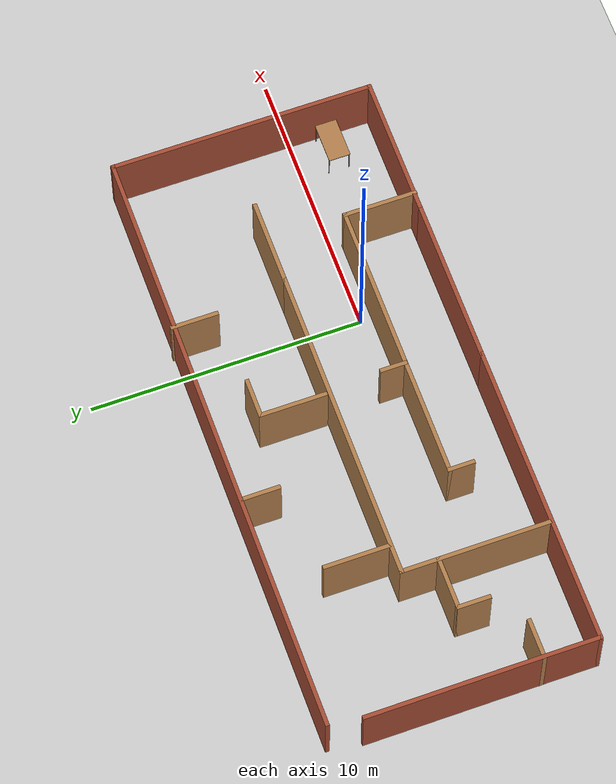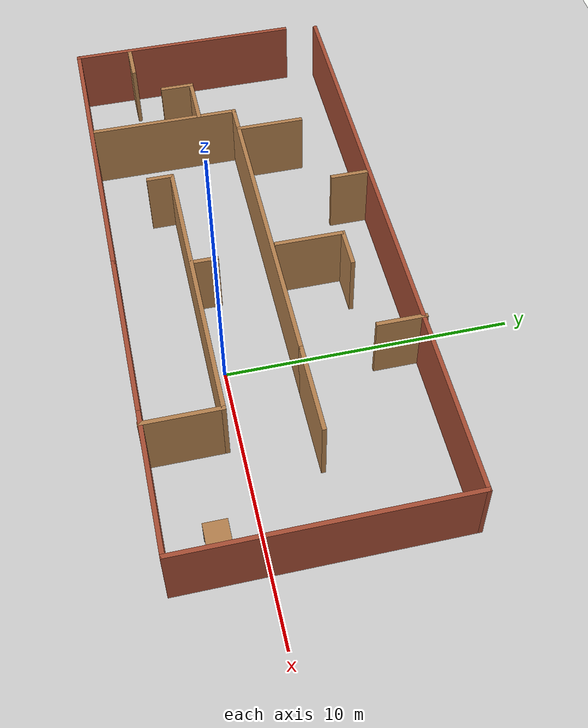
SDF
<sdf version="1.7">
 <world name="default">
  <light name="sun" type="directional">
   <pose>0 0 10 0 -0 0</pose>
   <diffuse>0.8 0.8 0.8 1</diffuse>
   <specular>0.2 0.2 0.2 1</specular>
   <attenuation>
    <range>1000</range>
    <constant>0.9</constant>
    <linear>0.01</linear>
    <quadratic>0.001</quadratic>
   </attenuation>
   <direction>-0.5 0.1 -0.9</direction>
   <spot><inner_angle>0</inner_angle><outer_angle>0</outer_angle><falloff>0</falloff></spot>
  </light>
  <model name="ground_plane">
   <static>1</static>
   <link name="link">
    <collision name="collision">
     <geometry><plane><normal>0 0 1</normal><size>100 100</size></plane></geometry>
     <surface>
      <contact><collide_bitmask>65535</collide_bitmask></contact>
      <friction><ode><mu>100</mu><mu2>50</mu2></ode></friction>
     </surface>
    </collision>
    <visual name="visual">
     <cast_shadows>0</cast_shadows>
     <geometry><plane><normal>0 0 1</normal><size>100 100</size></plane></geometry>
     <material>
      <script><uri>file://media/materials/scripts/gazebo.material</uri><name>Gazebo/Grey</name></script>
     </material>
    </visual>
   </link>
  </model>
  <gravity>0 0 -9.8</gravity>
  <magnetic_field>6e-06 2.3e-05 -4.2e-05</magnetic_field>
  <atmosphere type="adiabatic"/>
  <physics type="ode">
   <max_step_size>0.001</max_step_size>
   <real_time_factor>1</real_time_factor>
   <real_time_update_rate>1000</real_time_update_rate>
  </physics>
  <scene><ambient>0.4 0.4 0.4 1</ambient><background>0.7 0.7 0.7 1</background><shadows>1</shadows></scene>
  <audio><device>default</device></audio>
  <spherical_coordinates>
   <surface_model>EARTH_WGS84</surface_model>
   <latitude_deg>0</latitude_deg>
   <longitude_deg>0</longitude_deg>
   <elevation>0</elevation>
   <heading_deg>0</heading_deg>
  </spherical_coordinates>
  <model name="exploration_world2">
   <pose>-3.61272 1.77327 0 0 -0 0</pose>
   <link name="Wall_27">
    <collision name="Wall_27_Collision">
     <geometry><box><size>6.25 0.15 2.5</size></box></geometry>
     <pose>0 0 1.25 0 -0 0</pose>
    </collision>
    <visual name="Wall_27_Visual">
     <pose>0 0 1.25 0 -0 0</pose>
     <geometry><box><size>6.25 0.15 2.5</size></box></geometry>
     <material>
      <script><uri>file://media/materials/scripts/gazebo.material</uri><name>Gazebo/Bricks</name></script>
      <ambient>1 1 1 1</ambient>
     </material>
     <meta><layer>0</layer></meta>
    </visual>
    <pose>3.00271 -4.82327 0 0 -0 0</pose>
   </link>
   <link name="Wall_28">
    <collision name="Wall_28_Collision">
     <geometry><box><size>5.25 0.15 2.5</size></box></geometry>
     <pose>0 0 1.25 0 -0 0</pose>
    </collision>
    <visual name="Wall_28_Visual">
     <pose>0 0 1.25 0 -0 0</pose>
     <geometry><box><size>5.25 0.15 2.5</size></box></geometry>
     <material>
      <script><uri>file://media/materials/scripts/gazebo.material</uri><name>Gazebo/Bricks</name></script>
      <ambient>1 1 1 1</ambient>
     </material>
     <meta><layer>0</layer></meta>
    </visual>
    <pose>8.60271 -4.82327 0 0 -0 0</pose>
   </link>
   <link name="Wall_29">
    <collision name="Wall_29_Collision">
     <geometry><box><size>9.75 0.15 2.5</size></box></geometry>
     <pose>0 0 1.25 0 -0 0</pose>
    </collision>
    <visual name="Wall_29_Visual">
     <pose>0 0 1.25 0 -0 0</pose>
     <geometry><box><size>9.75 0.15 2.5</size></box></geometry>
     <material>
      <script><uri>file://media/materials/scripts/gazebo.material</uri><name>Gazebo/Bricks</name></script>
      <ambient>1 1 1 1</ambient>
     </material>
     <meta><layer>0</layer></meta>
    </visual>
    <pose>11.1527 -0.023267 0 0 -0 1.5708</pose>
   </link>
   <link name="Wall_30">
    <collision name="Wall_30_Collision">
     <geometry><box><size>22.25 0.15 2.5</size></box></geometry>
     <pose>0 0 1.25 0 -0 0</pose>
    </collision>
    <visual name="Wall_30_Visual">
     <pose>0 0 1.25 0 -0 0</pose>
     <geometry><box><size>22.25 0.15 2.5</size></box></geometry>
     <material>
      <script><uri>file://media/materials/scripts/gazebo.material</uri><name>Gazebo/Bricks</name></script>
      <ambient>1 1 1 1</ambient>
     </material>
     <meta><layer>0</layer></meta>
    </visual>
    <pose>0.102715 4.77673 0 0 -0 3.14159</pose>
   </link>
   <link name="Wall_32">
    <collision name="Wall_32_Collision">
     <geometry><box><size>11.25 0.15 2.5</size></box></geometry>
     <pose>0 0 1.25 0 -0 0</pose>
    </collision>
    <visual name="Wall_32_Visual">
     <pose>0 0 1.25 0 -0 0</pose>
     <geometry><box><size>11.25 0.15 2.5</size></box></geometry>
     <material>
      <script><uri>file://media/materials/scripts/gazebo.material</uri><name>Gazebo/Bricks</name></script>
      <ambient>1 1 1 1</ambient>
     </material>
     <meta><layer>0</layer></meta>
    </visual>
    <pose>-5.59729 -4.82327 0 0 -0 3.14159</pose>
   </link>
   <link name="Wall_33">
    <collision name="Wall_33_Collision">
     <geometry><box><size>8.5 0.15 2.5</size></box></geometry>
     <pose>0 0 1.25 0 -0 0</pose>
    </collision>
    <visual name="Wall_33_Visual">
     <pose>0 0 1.25 0 -0 0</pose>
     <geometry><box><size>8.5 0.15 2.5</size></box></geometry>
     <material>
      <script><uri>file://media/materials/scripts/gazebo.material</uri><name>Gazebo/Bricks</name></script>
      <ambient>1 1 1 1</ambient>
     </material>
     <meta><layer>0</layer></meta>
    </visual>
    <pose>-11.1473 -0.648267 0 0 -0 1.5708</pose>
   </link>
   <link name="Wall_35">
    <collision name="Wall_35_Collision">
     <geometry><box><size>5.5 0.15 2.5</size></box></geometry>
     <pose>0 0 1.25 0 -0 0</pose>
    </collision>
    <visual name="Wall_35_Visual">
     <pose>0 0 1.25 0 -0 0</pose>
     <geometry><box><size>5.5 0.15 2.5</size></box></geometry>
     <material>
      <script><uri>file://media/materials/scripts/gazebo.material</uri><name>Gazebo/Wood</name></script>
      <ambient>1 1 1 1</ambient>
     </material>
     <meta><layer>0</layer></meta>
    </visual>
    <pose>-6.688 -2.088 0 0 -0 1.5708</pose>
   </link>
   <link name="Wall_36">
    <collision name="Wall_36_Collision">
     <geometry><box><size>11.75 0.15 2.5</size></box></geometry>
     <pose>0 0 1.25 0 -0 0</pose>
    </collision>
    <visual name="Wall_36_Visual">
     <pose>0 0 1.25 0 -0 0</pose>
     <geometry><box><size>11.75 0.15 2.5</size></box></geometry>
     <material>
      <script><uri>file://media/materials/scripts/gazebo.material</uri><name>Gazebo/Wood</name></script>
      <ambient>1 1 1 1</ambient>
     </material>
     <meta><layer>0</layer></meta>
    </visual>
    <pose>-0.887996 0.587003 0 0 -0 0</pose>
   </link>
   <link name="Wall_38">
    <collision name="Wall_38_Collision">
     <geometry><box><size>1.5 0.15 2.5</size></box></geometry>
     <pose>0 0 1.25 0 -0 0</pose>
    </collision>
    <visual name="Wall_38_Visual">
     <pose>0 0 1.25 0 -0 0</pose>
     <geometry><box><size>1.5 0.15 2.5</size></box></geometry>
     <material>
      <script><uri>file://media/materials/scripts/gazebo.material</uri><name>Gazebo/Wood</name></script>
      <ambient>0.435294 0.796078 0.67451 1</ambient>
     </material>
     <meta><layer>0</layer></meta>
    </visual>
    <pose>-2.39619 4.09545 0 0 -0 -1.5708</pose>
   </link>
   <link name="Wall_40">
    <collision name="Wall_40_Collision">
     <geometry><box><size>2.5 0.15 2.5</size></box></geometry>
     <pose>0 0 1.25 0 -0 0</pose>
    </collision>
    <visual name="Wall_40_Visual">
     <pose>0 0 1.25 0 -0 0</pose>
     <geometry><box><size>2.5 0.15 2.5</size></box></geometry>
     <material>
      <script><uri>file://media/materials/scripts/gazebo.material</uri><name>Gazebo/Wood</name></script>
      <ambient>0.435294 0.796078 0.67451 1</ambient>
     </material>
     <meta><layer>0</layer></meta>
    </visual>
    <pose>0.343196 1.92674 0 0 -0 1.5708</pose>
   </link>
   <link name="Wall_41">
    <collision name="Wall_41_Collision">
     <geometry><box><size>1.5 0.15 2.5</size></box></geometry>
     <pose>0 0 1.25 0 -0 0</pose>
    </collision>
    <visual name="Wall_41_Visual">
     <pose>0 0 1.25 0 -0 0</pose>
     <geometry><box><size>1.5 0.15 2.5</size></box></geometry>
     <material>
      <script><uri>file://media/materials/scripts/gazebo.material</uri><name>Gazebo/Wood</name></script>
      <ambient>0.435294 0.796078 0.67451 1</ambient>
     </material>
     <meta><layer>0</layer></meta>
    </visual>
    <pose>1.0182 3.10175 0 0 -0 0</pose>
   </link>
   <link name="Wall_43">
    <collision name="Wall_43_Collision">
     <geometry><box><size>1.75 0.15 2.5</size></box></geometry>
     <pose>0 0 1.25 0 -0 0</pose>
    </collision>
    <visual name="Wall_43_Visual">
     <pose>0 0 1.25 0 -0 0</pose>
     <geometry><box><size>1.75 0.15 2.5</size></box></geometry>
     <material>
      <script><uri>file://media/materials/scripts/gazebo.material</uri><name>Gazebo/Wood</name></script>
      <ambient>0.435294 0.796078 0.67451 1</ambient>
     </material>
     <meta><layer>0</layer></meta>
    </visual>
    <pose>4.50671 4.04586 0 0 -0 -1.5708</pose>
   </link>
   <link name="Wall_45">
    <collision name="Wall_45_Collision">
     <geometry><box><size>3.25 0.15 2.5</size></box></geometry>
     <pose>0 0 1.25 0 -0 0</pose>
    </collision>
    <visual name="Wall_45_Visual">
     <pose>0 0 1.25 0 -0 0</pose>
     <geometry><box><size>3.25 0.15 2.5</size></box></geometry>
     <material>
      <script><uri>file://media/materials/scripts/gazebo.material</uri><name>Gazebo/Wood</name></script>
      <ambient>1 1 1 1</ambient>
     </material>
     <meta><layer>0</layer></meta>
    </visual>
    <pose>6.462 0.587003 0 0 -0 0</pose>
   </link>
   <link name="Wall_47">
    <collision name="Wall_47_Collision">
     <geometry><box><size>2.75 0.15 2.5</size></box></geometry>
     <pose>0 0 1.25 0 -0 0</pose>
    </collision>
    <visual name="Wall_47_Visual">
     <pose>0 0 1.25 0 -0 0</pose>
     <geometry><box><size>2.75 0.15 2.5</size></box></geometry>
     <material>
      <script><uri>file://media/materials/scripts/gazebo.material</uri><name>Gazebo/Wood</name></script>
      <ambient>1 1 1 1</ambient>
     </material>
     <meta><layer>0</layer></meta>
    </visual>
    <pose>6.61159 -3.54586 0 0 -0 1.5708</pose>
   </link>
   <link name="Wall_48">
    <collision name="Wall_48_Collision">
     <geometry><box><size>10.5 0.15 2.5</size></box></geometry>
     <pose>0 0 1.25 0 -0 0</pose>
    </collision>
    <visual name="Wall_48_Visual">
     <pose>0 0 1.25 0 -0 0</pose>
     <geometry><box><size>10.5 0.15 2.5</size></box></geometry>
     <material>
      <script><uri>file://media/materials/scripts/gazebo.material</uri><name>Gazebo/Wood</name></script>
      <ambient>1 1 1 1</ambient>
     </material>
     <meta><layer>0</layer></meta>
    </visual>
    <pose>1.43659 -2.24586 0 0 -0 3.14159</pose>
   </link>
   <link name="Wall_49">
    <collision name="Wall_49_Collision">
     <geometry><box><size>1 0.15 2.5</size></box></geometry>
     <pose>0 0 1.25 0 -0 0</pose>
    </collision>
    <visual name="Wall_49_Visual">
     <pose>0 0 1.25 0 -0 0</pose>
     <geometry><box><size>1 0.15 2.5</size></box></geometry>
     <material>
      <script><uri>file://media/materials/scripts/gazebo.material</uri><name>Gazebo/Wood</name></script>
      <ambient>0.435294 0.796078 0.67451 1</ambient>
     </material>
     <meta><layer>0</layer></meta>
    </visual>
    <pose>-3.73841 -2.67086 0 0 -0 -1.5708</pose>
   </link>
   <link name="Wall_52">
    <collision name="Wall_52_Collision">
     <geometry><box><size>1 0.15 2.5</size></box></geometry>
     <pose>0 0 1.25 0 -0 0</pose>
    </collision>
    <visual name="Wall_52_Visual">
     <pose>0 0 1.25 0 -0 0</pose>
     <geometry><box><size>1 0.15 2.5</size></box></geometry>
     <material>
      <script><uri>file://media/materials/scripts/gazebo.material</uri><name>Gazebo/Wood</name></script>
      <ambient>0.435294 0.796078 0.67451 1</ambient>
     </material>
     <meta><layer>0</layer></meta>
    </visual>
    <pose>0.528241 -1.8071 0 0 -0 1.5708</pose>
   </link>
   <link name="Wall_54">
    <collision name="Wall_54_Collision">
     <geometry><box><size>2.5 0.15 2.5</size></box></geometry>
     <pose>0 0 1.25 0 -0 0</pose>
    </collision>
    <visual name="Wall_54_Visual">
     <pose>0 0 1.25 0 -0 0</pose>
     <geometry><box><size>2.5 0.15 2.5</size></box></geometry>
     <material>
      <script><uri>file://media/materials/scripts/gazebo.material</uri><name>Gazebo/Wood</name></script>
      <ambient>0.435294 0.796078 0.67451 1</ambient>
     </material>
     <meta><layer>0</layer></meta>
    </visual>
    <pose>-5.67076 1.76483 0 0 -0 1.5708</pose>
   </link>
   <link name="Wall_56">
    <collision name="Wall_56_Collision">
     <geometry><box><size>2 0.15 2.5</size></box></geometry>
     <pose>0 0 1.25 0 -0 0</pose>
    </collision>
    <visual name="Wall_56_Visual">
     <pose>0 0 1.25 0 -0 0</pose>
     <geometry><box><size>2 0.15 2.5</size></box></geometry>
     <material>
      <script><uri>file://media/materials/scripts/gazebo.material</uri><name>Gazebo/Wood</name></script>
      <ambient>0.435294 0.796078 0.67451 1</ambient>
     </material>
     <meta><layer>0</layer></meta>
    </visual>
    <pose>-7.61351 -0.751745 0 0 -0 3.14159</pose>
   </link>
   <link name="Wall_57">
    <collision name="Wall_57_Collision">
     <geometry><box><size>1.25 0.15 2.5</size></box></geometry>
     <pose>0 0 1.25 0 -0 0</pose>
    </collision>
    <visual name="Wall_57_Visual">
     <pose>0 0 1.25 0 -0 0</pose>
     <geometry><box><size>1.25 0.15 2.5</size></box></geometry>
     <material>
      <script><uri>file://media/materials/scripts/gazebo.material</uri><name>Gazebo/Wood</name></script>
      <ambient>0.435294 0.796078 0.67451 1</ambient>
     </material>
     <meta><layer>0</layer></meta>
    </visual>
    <pose>-8.53851 -1.30174 0 0 -0 -1.5708</pose>
   </link>
   <link name="Wall_59">
    <collision name="Wall_59_Collision">
     <geometry><box><size>1.5 0.15 2.5</size></box></geometry>
     <pose>0 0 1.25 0 -0 0</pose>
    </collision>
    <visual name="Wall_59_Visual">
     <pose>0 0 1.25 0 -0 0</pose>
     <geometry><box><size>1.5 0.15 2.5</size></box></geometry>
     <material>
      <script><uri>file://media/materials/scripts/gazebo.material</uri><name>Gazebo/Wood</name></script>
      <ambient>0.435294 0.796078 0.67451 1</ambient>
     </material>
     <meta><layer>0</layer></meta>
    </visual>
    <pose>-10.4777 -2.81037 0 0 -0 0</pose>
   </link>
   <static>1</static>
  </model>
  <model name="table">
   <static>1</static>
   <link name="link">
    <collision name="surface">
     <pose>0 0 1 0 -0 0</pose>
     <geometry><box><size>1.5 0.8 0.03</size></box></geometry>
     <surface><friction><ode><mu>0.6</mu><mu2>0.6</mu2></ode></friction></surface>
    </collision>
    <visual name="visual1">
     <pose>0 0 1 0 -0 0</pose>
     <geometry><box><size>1.5 0.8 0.03</size></box></geometry>
     <material>
      <script><uri>file://media/materials/scripts/gazebo.material</uri><name>Gazebo/Wood</name></script>
     </material>
    </visual>
    <collision name="front_left_leg">
     <pose>0.68 0.38 0.5 0 -0 0</pose>
     <geometry><cylinder><radius>0.02</radius><length>1</length></cylinder></geometry>
    </collision>
    <visual name="front_left_leg">
     <pose>0.68 0.38 0.5 0 -0 0</pose>
     <geometry><cylinder><radius>0.02</radius><length>1</length></cylinder></geometry>
     <material>
      <script><uri>file://media/materials/scripts/gazebo.material</uri><name>Gazebo/Grey</name></script>
     </material>
    </visual>
    <collision name="front_right_leg">
     <pose>0.68 -0.38 0.5 0 -0 0</pose>
     <geometry><cylinder><radius>0.02</radius><length>1</length></cylinder></geometry>
    </collision>
    <visual name="front_right_leg">
     <pose>0.68 -0.38 0.5 0 -0 0</pose>
     <geometry><cylinder><radius>0.02</radius><length>1</length></cylinder></geometry>
     <material>
      <script><uri>file://media/materials/scripts/gazebo.material</uri><name>Gazebo/Grey</name></script>
     </material>
    </visual>
    <collision name="back_right_leg">
     <pose>-0.68 -0.38 0.5 0 -0 0</pose>
     <geometry><cylinder><radius>0.02</radius><length>1</length></cylinder></geometry>
    </collision>
    <visual name="back_right_leg">
     <pose>-0.68 -0.38 0.5 0 -0 0</pose>
     <geometry><cylinder><radius>0.02</radius><length>1</length></cylinder></geometry>
     <material>
      <script><uri>file://media/materials/scripts/gazebo.material</uri><name>Gazebo/Grey</name></script>
     </material>
    </visual>
    <collision name="back_left_leg">
     <pose>-0.68 0.38 0.5 0 -0 0</pose>
     <geometry><cylinder><radius>0.02</radius><length>1</length></cylinder></geometry>
    </collision>
    <visual name="back_left_leg">
     <pose>-0.68 0.38 0.5 0 -0 0</pose>
     <geometry><cylinder><radius>0.02</radius><length>1</length></cylinder></geometry>
     <material>
      <script><uri>file://media/materials/scripts/gazebo.material</uri><name>Gazebo/Grey</name></script>
     </material>
    </visual>
   </link>
   <pose>6.7014 -1.36283 0 0 -0 0</pose>
  </model>
 </world>
</sdf>
